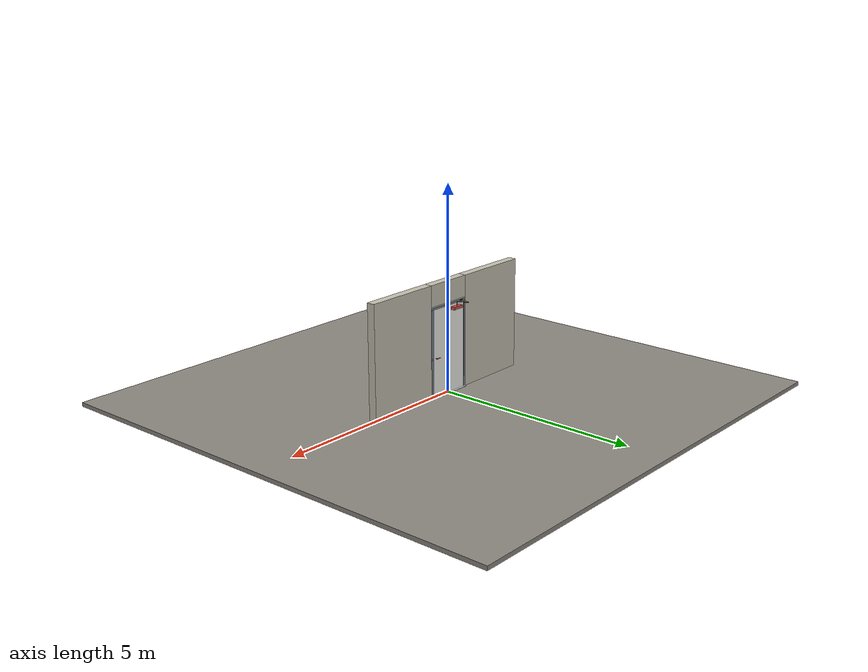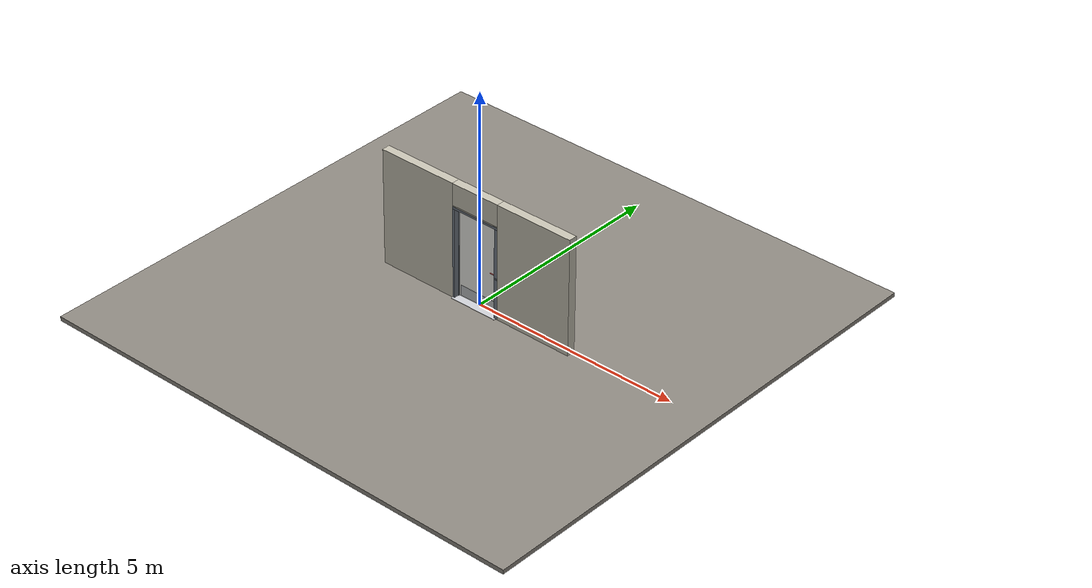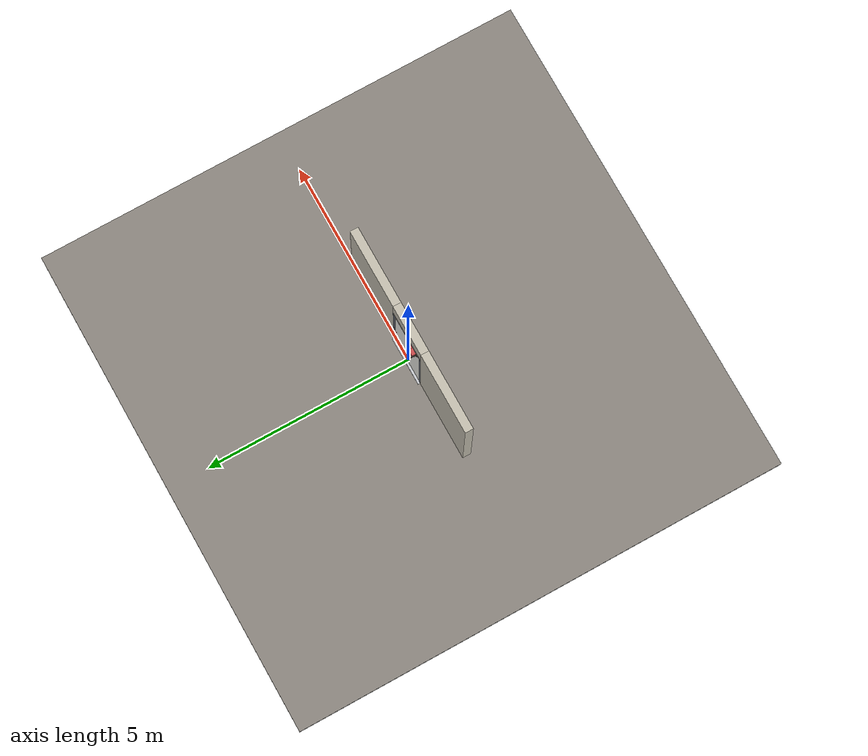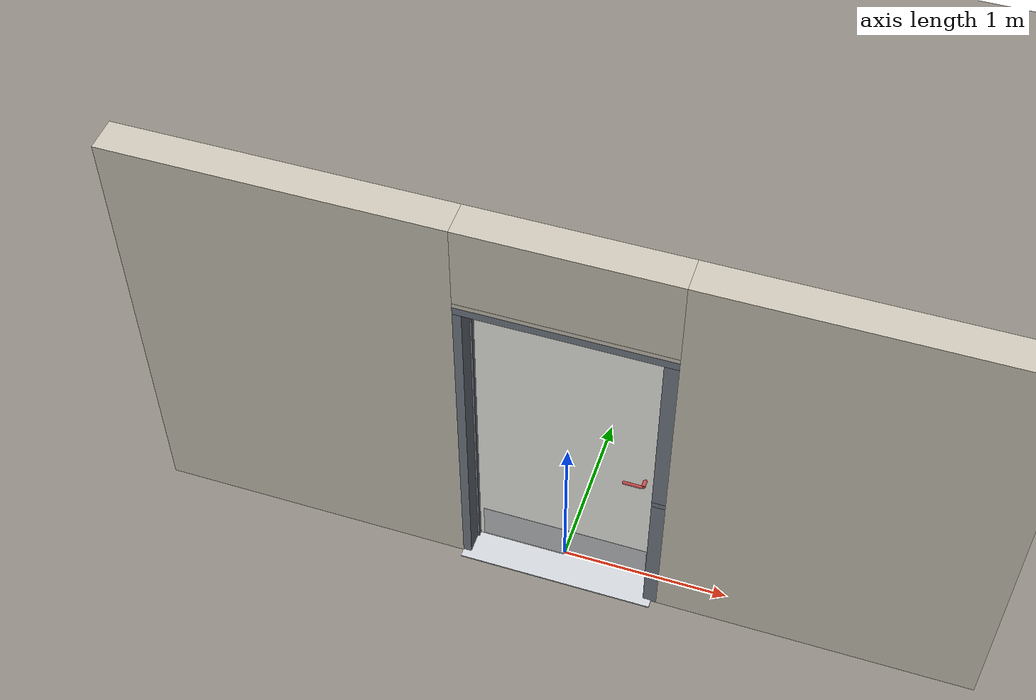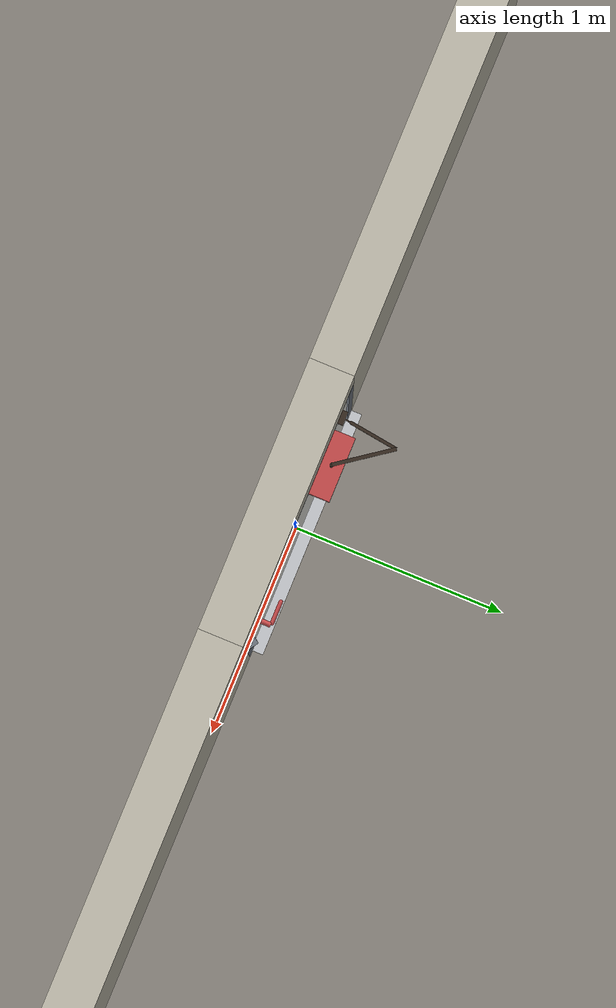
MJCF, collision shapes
<?xml version="1.0" ?>
<mujoco model="db0247_swing_single_full">
  <compiler angle="radian" meshdir="../../hardware" texturedir="../../textures" autolimits="true" inertiafromgeom="false"/>
  <option timestep="0.002" integrator="implicitfast" cone="elliptic" impratio="10" noslip_iterations="3">
    <flag multiccd="enable"/>
  </option>
  <size memory="16M"/>
  <default>
    <geom condim="4" solref="0.005 1" solimp="0.95 0.99 0.001"/>
    <joint solreflimit="0.005 1" solimplimit="0.95 0.99 0.001"/>
    <tendon solreflimit="0.005 1"/>
    <equality solref="0.002 1"/>
  </default>
  <visual>
    <headlight ambient="0.4 0.4 0.4" diffuse="0.7 0.7 0.7" specular="0.2 0.2 0.2"/>
    <quality shadowsize="4096"/>
    <map znear="0.01" zfar="60"/>
  </visual>
  <asset>
    <mesh name="closer_body_fdc4667657" file="closer_body_fdc4667657.obj"/>
    <mesh name="hinge_e22b26c0c1" file="hinge_e22b26c0c1.obj"/>
    <mesh name="hinge_jamb_e1d088f8dc" file="hinge_jamb_e1d088f8dc.obj"/>
    <mesh name="lever_6268dcb28c" file="lever_6268dcb28c.obj"/>
    <material name="mat_floor" rgba="0.55 0.53 0.5 1" specular="0.2" shininess="0.15" reflectance="0"/>
    <material name="mat_wall" rgba="0.78 0.76 0.7 1" specular="0.2" shininess="0.1" reflectance="0"/>
    <material name="mat_leaf" rgba="0.93 0.93 0.91 1" specular="0.2" shininess="0.54" reflectance="0"/>
    <material name="mat_hinge" rgba="0.65 0.66 0.68 1" specular="0.74" shininess="0.5" reflectance="0.36"/>
    <material name="mat_op_stainless" rgba="0.75 0.76 0.77 1" specular="0.8" shininess="0.65" reflectance="0.4"/>
    <material name="mat_trim" rgba="0.85 0.66 0.3 1" specular="0.8" shininess="0.75" reflectance="0.4"/>
    <material name="mat_bolt" rgba="0.85 0.66 0.3 1" specular="0.8" shininess="0.75" reflectance="0.4"/>
    <material name="mat_frame" rgba="0.45 0.48 0.52 1" specular="0.32" shininess="0.6" reflectance="0.08"/>
    <material name="mat_threshold" rgba="0.8 0.81 0.83 1" specular="0.8" shininess="0.6" reflectance="0.4"/>
    <material name="mat_closer" rgba="0.22 0.17 0.13 1" specular="0.8" shininess="0.6" reflectance="0.4"/>
    <material name="mat_kick" rgba="0.75 0.76 0.77 1" specular="0.8" shininess="0.65" reflectance="0.4"/>
    <texture name="skybox" type="skybox" builtin="gradient" rgb1="0.6 0.7 0.85" rgb2="0.9 0.92 0.95" width="256" height="256"/>
  </asset>
  <worldbody>
    <light name="sun" pos="1.5 -2.5 4" dir="-0.3 0.5 -0.8" directional="true" diffuse="0.8 0.8 0.8" specular="0.3 0.3 0.3" castshadow="true"/>
    <light name="fill" pos="-1.5 2.5 3" dir="0.3 -0.5 -0.7" directional="true" diffuse="0.35 0.35 0.4" castshadow="false"/>
    <camera name="robot_view" pos="0 -2.708813 1.812087" xyaxes="1 0 0 0 0.26963 0.962964" fovy="52"/>
    <camera name="far_view" pos="0 2.566812 1.812087" xyaxes="-1 0 0 0 -0.26963 0.962964" fovy="52"/>
    <camera name="iso" pos="2.004737 -2.286763 2.234138" xyaxes="0.741536 0.670913 0 -0.242917 0.268487 0.932151" fovy="46"/>
    <camera name="detail_handle" pos="0.547 -0.877 1.245" xyaxes="0.97561 0.219512 0 -0.070934 0.315262 0.94635" fovy="38"/>
    <geom name="floor" type="box" size="6 6 0.05" pos="0 0 -0.05" material="mat_floor" group="0" contype="1" conaffinity="1" friction="0.8 0.005 0.0001" density="2400"/>
    <geom name="wall_left" type="box" size="0.9565 0.1 1.3735" pos="-1.5435 -0.071 1.3735" material="mat_wall" group="0" contype="1" conaffinity="1" friction="0.6 0.005 0.0001" density="800"/>
    <geom name="wall_right" type="box" size="0.9415 0.1 1.3735" pos="1.5585 -0.071 1.3735" material="mat_wall" group="0" contype="1" conaffinity="1" friction="0.6 0.005 0.0001" density="800"/>
    <geom name="wall_header" type="box" size="0.602 0.1 0.26" pos="0.015 -0.071 2.487" material="mat_wall" group="0" contype="1" conaffinity="1" friction="0.6 0.005 0.0001" density="800"/>
    <geom name="hinge_0_jamb" type="mesh" mesh="hinge_jamb_e1d088f8dc" pos="-0.534 0.029 0.259" quat="0 1 0 0" material="mat_hinge" group="1" contype="0" conaffinity="0" density="7850"/>
    <geom name="hinge_1_jamb" type="mesh" mesh="hinge_jamb_e1d088f8dc" pos="-0.534 0.029 1.076" quat="0 1 0 0" material="mat_hinge" group="1" contype="0" conaffinity="0" density="7850"/>
    <geom name="hinge_2_jamb" type="mesh" mesh="hinge_jamb_e1d088f8dc" pos="-0.534 0.029 1.963" quat="0 1 0 0" material="mat_hinge" group="1" contype="0" conaffinity="0" density="7850"/>
    <geom name="jamb_hinge" type="box" size="0.025 0.1 1.0735" pos="-0.562 -0.071 1.0735" material="mat_frame" group="0" contype="1" conaffinity="1" friction="0.6 0.005 0.0001" density="300"/>
    <geom name="strike_965_wall_n" type="box" size="0.04 0.08075 0.0183" pos="0.577 -0.09025 0.965" material="mat_frame" group="0" contype="1" conaffinity="1" friction="0.6 0.005 0.0001" density="300"/>
    <geom name="strike_965_wall_p" type="box" size="0.04 0.008 0.0183" pos="0.577 0.0175 0.965" material="mat_frame" group="0" contype="1" conaffinity="1" friction="0.6 0.005 0.0001" density="300"/>
    <geom name="strike_965_ramp" type="box" size="0.04 0.018028 0.0183" pos="0.580282 0.018312 0.965" quat="0.957092 0 0 -0.289784" material="mat_frame" group="0" contype="1" conaffinity="1" friction="0.12 0.005 0.0001" density="300"/>
    <geom name="strike_965_back" type="box" size="0.0285 0.0095 0.0183" pos="0.5885 0 0.965" material="mat_frame" group="0" contype="1" conaffinity="1" friction="0.6 0.005 0.0001" density="300"/>
    <geom name="jamb_strike_0" type="box" size="0.04 0.1 0.47335" pos="0.577 -0.071 0.47335" material="mat_frame" group="0" contype="1" conaffinity="1" friction="0.6 0.005 0.0001" density="300"/>
    <geom name="jamb_strike_1" type="box" size="0.04 0.1 0.58185" pos="0.577 -0.071 1.56515" material="mat_frame" group="0" contype="1" conaffinity="1" friction="0.6 0.005 0.0001" density="300"/>
    <geom name="jamb_head" type="box" size="0.602 0.1 0.025" pos="0.015 -0.071 2.172" material="mat_frame" group="0" contype="1" conaffinity="1" friction="0.6 0.005 0.0001" density="300"/>
    <geom name="head_stud" type="box" size="0.602 0.1 0.015" pos="0.015 -0.071 2.212" material="mat_wall" group="0" contype="1" conaffinity="1" friction="0.6 0.005 0.0001" density="500"/>
    <geom name="stop_hinge" type="box" size="0.0055 0.016 1.0735" pos="-0.5315 -0.0385 1.0735" material="mat_frame" group="0" contype="1" conaffinity="1" friction="0.6 0.005 0.0001" density="300"/>
    <geom name="stop_strike" type="box" size="0.0055 0.016 1.0735" pos="0.5315 -0.0385 1.0735" material="mat_frame" group="0" contype="1" conaffinity="1" friction="0.6 0.005 0.0001" density="300"/>
    <geom name="stop_head" type="box" size="0.537 0.016 0.0055" pos="0 -0.0385 2.1415" material="mat_frame" group="0" contype="1" conaffinity="1" friction="0.6 0.005 0.0001" density="300"/>
    <geom name="threshold" type="box" size="0.587 0.15 0.004" pos="0 -0.071 0.004" material="mat_threshold" group="0" contype="1" conaffinity="1" friction="0.6 0.005 0.0001" density="2700"/>
    <geom name="closer_bracket" type="box" size="0.03 0.012 0.014" pos="-0.437 0.041 2.177" material="mat_closer" group="1" contype="0" conaffinity="0" density="2700"/>
    <site name="approach_point" pos="0 -1.5 0" quat="1 0 0 0" size="0.05" rgba="0.2 0.9 0.2 0.5" group="4"/>
    <site name="goal_point" pos="0 1.5 0" quat="1 0 0 0" size="0.05" rgba="0.2 0.9 0.2 0.5" group="4"/>
    <site name="door_plane_center" pos="0 0 1.0735" quat="1 0 0 0" size="0.02" rgba="0.2 0.9 0.2 0.5" group="4"/>
    <body name="leaf" pos="-0.537 0 0">
      <inertial pos="0.490801 0.011848 1.211651" mass="71.964849" quat="0.522245 0.520009 0.467291 -0.488355" diaginertia="6.210440712 34.925660308 41.028069653"/>
      <joint name="leaf_hinge" type="hinge" axis="0 0 1" pos="0.003 0.029 0" limited="true" range="0 1.570796" damping="12.49954" frictionloss="0.317365" stiffness="14.018367" springref="-2.188557" armature="0.02"/>
      <geom name="leaf_slab" type="box" size="0.5335 0.022 1.067" pos="0.5365 0 1.076" material="mat_leaf" group="0" contype="1" conaffinity="1" friction="0.4 0.005 0.0001" density="1"/>
      <geom name="hinge_0" type="mesh" mesh="hinge_e22b26c0c1" pos="0.003 0.029 0.259" quat="0 1 0 0" material="mat_hinge" group="1" contype="0" conaffinity="0" density="7850"/>
      <geom name="hinge_1" type="mesh" mesh="hinge_e22b26c0c1" pos="0.003 0.029 1.076" quat="0 1 0 0" material="mat_hinge" group="1" contype="0" conaffinity="0" density="7850"/>
      <geom name="hinge_2" type="mesh" mesh="hinge_e22b26c0c1" pos="0.003 0.029 1.963" quat="0 1 0 0" material="mat_hinge" group="1" contype="0" conaffinity="0" density="7850"/>
      <geom name="leaf_latch_bolt_faceplate" type="box" size="0.0006 0.014 0.0283" pos="1.0694 0 0.965" material="mat_bolt" group="1" contype="0" conaffinity="0" density="8500"/>
      <geom name="closer_body" type="mesh" mesh="closer_body_fdc4667657" pos="0.3 0.022 2.054" quat="-0.707107 0.707107 0 0" material="mat_closer" group="1" contype="0" conaffinity="0" density="2000"/>
      <geom name="closer_body_col" type="box" size="0.145 0.05 0.035" pos="0.3 0.072 2.054" material="mat_closer" group="3" contype="1" conaffinity="1" rgba="0.8 0.3 0.3 0.25" friction="0.6 0.005 0.0001" density="2000"/>
      <geom name="closer_pinion_shaft" type="cylinder" size="0.008 0.0615" pos="0.3 0.072 2.1155" material="mat_closer" group="1" contype="0" conaffinity="0" density="2700"/>
      <geom name="kick_plate_n" type="box" size="0.5035 0.0008 0.125" pos="0.5365 -0.0228 0.144" material="mat_kick" group="2" contype="0" conaffinity="0" density="7900"/>
      <site name="leaf_edge_mid" pos="1.07 0 1.067" quat="1 0 0 0" size="0.02" rgba="0.2 0.9 0.2 0.5" group="4"/>
      <body name="leaf_handle" pos="1 0 0.965">
        <inertial pos="-0.035149 0 0" mass="1.038236" quat="0 0.707107 0.707107 0" diaginertia="0.002348364 0.00382535 0.005606687"/>
        <joint name="leaf_handle_hinge" type="hinge" axis="0 -1 0" limited="true" range="0 0.96" damping="0.255791" frictionloss="0.05" stiffness="1.2" springref="-0.583333" armature="0.01"/>
        <geom name="leaf_handle_spindle" type="cylinder" size="0.006 0.03" pos="0 0 0" quat="0.707107 -0.707107 0 0" material="mat_op_stainless" group="1" contype="0" conaffinity="0" density="7850"/>
        <geom name="leaf_handle_lever_n" type="mesh" mesh="lever_6268dcb28c" pos="0 -0.022 0" quat="0.707107 0.707107 0 0" material="mat_op_stainless" group="1" contype="0" conaffinity="0" density="3000"/>
        <geom name="leaf_handle_lever_col_n" type="capsule" size="0.0095 0.0505" pos="-0.06 -0.077 0" quat="0.707107 0 -0.707107 0" material="mat_op_stainless" group="3" contype="1" conaffinity="1" rgba="0.8 0.3 0.3 0.25" friction="0.7 0.01 0.0001" density="3000"/>
        <geom name="leaf_handle_hub_col_n" type="cylinder" size="0.012 0.022" pos="0 -0.052 0" quat="0.707107 -0.707107 0 0" material="mat_op_stainless" group="3" contype="1" conaffinity="1" rgba="0.8 0.3 0.3 0.25" friction="0.6 0.005 0.0001" density="3000"/>
        <geom name="leaf_handle_lever_p" type="mesh" mesh="lever_6268dcb28c" pos="0 0.022 0" quat="-0.707107 0.707107 0 0" material="mat_op_stainless" group="1" contype="0" conaffinity="0" density="3000"/>
        <geom name="leaf_handle_lever_col_p" type="capsule" size="0.0095 0.0505" pos="-0.06 0.077 0" quat="0.707107 0 -0.707107 0" material="mat_op_stainless" group="3" contype="1" conaffinity="1" rgba="0.8 0.3 0.3 0.25" friction="0.7 0.01 0.0001" density="3000"/>
        <geom name="leaf_handle_hub_col_p" type="cylinder" size="0.012 0.022" pos="0 0.052 0" quat="0.707107 -0.707107 0 0" material="mat_op_stainless" group="3" contype="1" conaffinity="1" rgba="0.8 0.3 0.3 0.25" friction="0.6 0.005 0.0001" density="3000"/>
        <site name="leaf_handle_grip_n" pos="-0.096 -0.077 0" quat="1 0 0 0" size="0.012" rgba="0.2 0.9 0.2 0.5" group="4"/>
        <site name="leaf_handle_grip_p" pos="-0.096 0.077 0" quat="1 0 0 0" size="0.012" rgba="0.2 0.9 0.2 0.5" group="4"/>
      </body>
      <body name="leaf_latch_bolt" pos="1.07 0 0.965">
        <inertial pos="-0.0055 0 0" mass="0.074627" quat="0.92388 -0.382683 0 0" diaginertia="0.000002271 0.000013255 0.000013255"/>
        <joint name="leaf_latch_bolt_slide" type="slide" axis="-1 0 0" limited="true" range="0 0.019" damping="2" frictionloss="0.3" stiffness="600" springref="-0.01" armature="0.1"/>
        <geom name="leaf_latch_bolt_capsule" type="capsule" size="0.008 0.0165" pos="-0.0055 0 0" quat="0.707107 0 0.707107 0" material="mat_bolt" group="0" contype="1" conaffinity="1" friction="0.2 0.005 0.0001" density="8500"/>
      </body>
      <body name="closer_arm_main" pos="0.3 0.072 2.177" quat="0.454107 0 0 0.890947">
        <inertial pos="0.14 0 0" mass="0.12096" quat="1 0 0 0" diaginertia="0.000003588 0.00079128 0.000792852"/>
        <joint name="closer_pinion" type="hinge" axis="0 0 1" limited="false" damping="0.01" armature="0.002"/>
        <geom name="closer_arm_main_geom" type="box" size="0.14 0.008 0.005" pos="0.14 0 0" material="mat_closer" group="1" contype="0" conaffinity="0" density="2700"/>
        <body name="closer_arm_fore" pos="0.28 0 0" quat="-0.373215 0 0 -0.927745">
          <inertial pos="0.128088 0 0" mass="0.076531" quat="1 0 0 0" diaginertia="0.000001771 0.000437665 0.000438201"/>
          <joint name="closer_elbow" type="hinge" axis="0 0 1" limited="false" damping="0.01" armature="0.002"/>
          <geom name="closer_arm_fore_geom" type="box" size="0.1125 0.007 0.004" pos="0.1125 0 0" material="mat_closer" group="1" contype="0" conaffinity="0" density="2700"/>
          <geom name="closer_fore_neck" type="box" size="0.0175 0.003 0.003" pos="0.2425 0 0" material="mat_closer" group="1" contype="0" conaffinity="0" density="2700"/>
          <geom name="closer_fore_pivot" type="cylinder" size="0.005 0.012" pos="0.26 0 0" material="mat_closer" group="1" contype="0" conaffinity="0" density="2700"/>
        </body>
      </body>
    </body>
  </worldbody>
  <tendon>
    <fixed name="leaf_latch_bolt_coupling" limited="true" range="0 10">
      <joint joint="leaf_latch_bolt_slide" coef="1"/>
      <joint joint="leaf_handle_hinge" coef="-0.020879"/>
    </fixed>
  </tendon>
  <equality>
    <connect name="closer_arm_connect" body1="closer_arm_fore" body2="world" anchor="0.26 0 0" active="true"/>
  </equality>
  <contact>
    <exclude body1="closer_arm_main" body2="leaf"/>
    <exclude body1="closer_arm_fore" body2="leaf"/>
    <exclude body1="closer_arm_main" body2="closer_arm_fore"/>
  </contact>
  <sensor>
    <jointpos name="leaf_hinge_pos" joint="leaf_hinge"/>
    <jointvel name="leaf_hinge_vel" joint="leaf_hinge"/>
    <jointpos name="leaf_handle_hinge_pos" joint="leaf_handle_hinge"/>
    <jointvel name="leaf_handle_hinge_vel" joint="leaf_handle_hinge"/>
    <jointpos name="leaf_latch_bolt_slide_pos" joint="leaf_latch_bolt_slide"/>
    <jointvel name="leaf_latch_bolt_slide_vel" joint="leaf_latch_bolt_slide"/>
  </sensor>
</mujoco>
